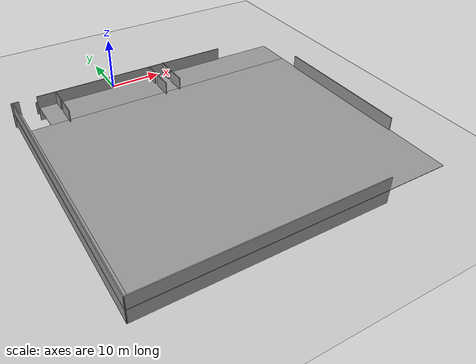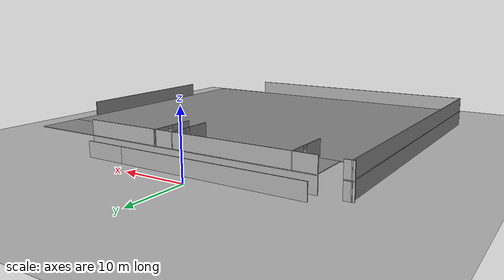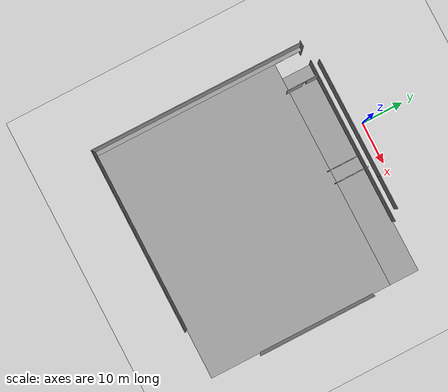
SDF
<sdf version="1.6">
 <world name="default">
  <model name="ground_plane">
   <static>1</static>
   <link name="link">
    <collision name="collision">
     <geometry><plane><normal>0 0 1</normal><size>100 100</size></plane></geometry>
     <surface>
      <contact><collide_bitmask>65535</collide_bitmask></contact>
      <friction><ode><mu>100</mu><mu2>50</mu2></ode></friction>
     </surface>
    </collision>
    <visual name="visual">
     <cast_shadows>0</cast_shadows>
     <geometry><plane><normal>0 0 1</normal><size>100 100</size></plane></geometry>
     <material>
      <script><uri>file://media/materials/scripts/gazebo.material</uri><name>Gazebo/Grey</name></script>
     </material>
    </visual>
   </link>
  </model>
  <model name="Level_1_with_doors">
   <link name="Wall_1">
    <pose>-6.28376 -25.0784 0 0 -0 0</pose>
    <inertial>
     <mass>1</mass>
     <inertia><ixx>1</ixx><ixy>0</ixy><ixz>0</ixz><iyy>1</iyy><iyz>0</iyz><izz>1</izz></inertia>
    </inertial>
    <visual name="Wall_1_Visual">
     <pose>0 0 1.25 0 -0 0</pose>
     <geometry><box><size>29.75 0.15 2.5</size></box></geometry>
     <material>
      <script><uri>file://media/materials/scripts/gazebo.material</uri><name>Gazebo/Grey</name></script>
      <ambient>1 1 1 1</ambient>
      <shader type="pixel"><normal_map>__default__</normal_map></shader>
      <diffuse>0.7 0.7 0.7 1</diffuse>
      <specular>0.01 0.01 0.01 1</specular>
      <emissive>0 0 0 1</emissive>
     </material>
     <meta><layer>0</layer></meta>
    </visual>
    <collision name="Wall_1_Collision">
     <pose>0 0 1.25 0 -0 0</pose>
     <geometry><box><size>29.75 0.15 2.5</size></box></geometry>
     <surface>
      <friction>
       <ode><mu>1</mu><mu2>1</mu2><fdir1>0 0 0</fdir1><slip1>0</slip1><slip2>0</slip2></ode>
       <torsional>
        <coefficient>1</coefficient>
        <patch_radius>0</patch_radius>
        <surface_radius>0</surface_radius>
        <use_patch_radius>1</use_patch_radius>
        <ode><slip>0</slip></ode>
       </torsional>
      </friction>
      <bounce><restitution_coefficient>0</restitution_coefficient><threshold>1e+06</threshold></bounce>
      <contact>
       <collide_without_contact>0</collide_without_contact>
       <collide_without_contact_bitmask>1</collide_without_contact_bitmask>
       <collide_bitmask>1</collide_bitmask>
       <ode>
        <soft_cfm>0</soft_cfm>
        <soft_erp>0.2</soft_erp>
        <kp>1e+13</kp>
        <kd>1</kd>
        <max_vel>0.01</max_vel>
        <min_depth>0</min_depth>
       </ode>
       <bullet>
        <split_impulse>1</split_impulse>
        <split_impulse_penetration_threshold>-0.01</split_impulse_penetration_threshold>
        <soft_cfm>0</soft_cfm>
        <soft_erp>0.2</soft_erp>
        <kp>1e+13</kp>
        <kd>1</kd>
       </bullet>
      </contact>
     </surface>
    </collision>
   </link>
   <link name="Wall_111_clone_0">
    <pose>11.2397 -25.0859 0 0 -0 0</pose>
    <inertial>
     <mass>1</mass>
     <inertia><ixx>1</ixx><ixy>0</ixy><ixz>0</ixz><iyy>1</iyy><iyz>0</iyz><izz>1</izz></inertia>
    </inertial>
    <visual name="Wall_111_Visual">
     <pose>0 0 1.25 0 -0 0</pose>
     <geometry><box><size>8 0.15 2.5</size></box></geometry>
     <material>
      <script><uri>file://media/materials/scripts/gazebo.material</uri><name>Gazebo/Grey</name></script>
      <ambient>1 1 1 1</ambient>
      <shader type="pixel"><normal_map>__default__</normal_map></shader>
      <diffuse>0.7 0.7 0.7 1</diffuse>
      <specular>0.01 0.01 0.01 1</specular>
      <emissive>0 0 0 1</emissive>
     </material>
     <meta><layer>0</layer></meta>
    </visual>
    <collision name="Wall_111_Collision">
     <pose>0 0 1.25 0 -0 0</pose>
     <geometry><box><size>8 0.15 2.5</size></box></geometry>
     <surface>
      <friction>
       <ode><mu>1</mu><mu2>1</mu2><fdir1>0 0 0</fdir1><slip1>0</slip1><slip2>0</slip2></ode>
       <torsional>
        <coefficient>1</coefficient>
        <patch_radius>0</patch_radius>
        <surface_radius>0</surface_radius>
        <use_patch_radius>1</use_patch_radius>
        <ode><slip>0</slip></ode>
       </torsional>
      </friction>
      <bounce><restitution_coefficient>0</restitution_coefficient><threshold>1e+06</threshold></bounce>
      <contact>
       <collide_without_contact>0</collide_without_contact>
       <collide_without_contact_bitmask>1</collide_without_contact_bitmask>
       <collide_bitmask>1</collide_bitmask>
       <ode>
        <soft_cfm>0</soft_cfm>
        <soft_erp>0.2</soft_erp>
        <kp>1e+13</kp>
        <kd>1</kd>
        <max_vel>0.01</max_vel>
        <min_depth>0</min_depth>
       </ode>
       <bullet>
        <split_impulse>1</split_impulse>
        <split_impulse_penetration_threshold>-0.01</split_impulse_penetration_threshold>
        <soft_cfm>0</soft_cfm>
        <soft_erp>0.2</soft_erp>
        <kp>1e+13</kp>
        <kd>1</kd>
       </bullet>
      </contact>
     </surface>
    </collision>
   </link>
   <static>1</static>
   <pose>4.79959 22.5424 0 0 -0 0</pose>
  </model>
  <model name="Lvl2_with_ramp">
   <link name="Floor_0">
    <pose>0 -0.277081 2.5 0 -0 0</pose>
    <visual name="Floor_0_Visual_2">
     <pose>2.31746 21.5343 0.05 0 -0 0</pose>
     <geometry><box><size>49.9669 6.78011 0.1</size></box></geometry>
     <material>
      <script><uri>file://media/materials/scripts/gazebo.material</uri><name>Gazebo/Grey</name></script>
      <ambient>1 1 1 1</ambient>
      <shader type="pixel"/>
     </material>
     <meta><layer>1</layer></meta>
    </visual>
    <visual name="Floor_0_Visual_1">
     <pose>0.563932 -3.39005 0.05 0 -0 0</pose>
     <geometry><box><size>53.474 43.0686 0.1</size></box></geometry>
     <material>
      <script><uri>file://media/materials/scripts/gazebo.material</uri><name>Gazebo/Grey</name></script>
      <ambient>1 1 1 1</ambient>
      <shader type="pixel"/>
     </material>
     <meta><layer>1</layer></meta>
    </visual>
    <visual name="Floor_0_Visual_0">
     <pose>-26.737 0 0.05 0 -0 0</pose>
     <geometry><box><size>1.12786 49.8487 0.1</size></box></geometry>
     <material>
      <script><uri>file://media/materials/scripts/gazebo.material</uri><name>Gazebo/Grey</name></script>
      <ambient>1 1 1 1</ambient>
      <shader type="pixel"/>
     </material>
     <meta><layer>1</layer></meta>
    </visual>
    <collision name="Floor_0_Collision_1">
     <pose>0.563932 -3.39005 0.05 0 -0 0</pose>
     <geometry><box><size>53.474 43.0686 0.1</size></box></geometry>
     <surface>
      <friction>
       <ode><mu>1</mu><mu2>1</mu2><fdir1>0 0 0</fdir1><slip1>0</slip1><slip2>0</slip2></ode>
       <torsional>
        <coefficient>1</coefficient>
        <patch_radius>0</patch_radius>
        <surface_radius>0</surface_radius>
        <use_patch_radius>1</use_patch_radius>
        <ode><slip>0</slip></ode>
       </torsional>
      </friction>
      <bounce><restitution_coefficient>0</restitution_coefficient><threshold>1e+06</threshold></bounce>
      <contact>
       <collide_without_contact>0</collide_without_contact>
       <collide_without_contact_bitmask>1</collide_without_contact_bitmask>
       <collide_bitmask>1</collide_bitmask>
       <ode>
        <soft_cfm>0</soft_cfm>
        <soft_erp>0.2</soft_erp>
        <kp>1e+13</kp>
        <kd>1</kd>
        <max_vel>0.01</max_vel>
        <min_depth>0</min_depth>
       </ode>
       <bullet>
        <split_impulse>1</split_impulse>
        <split_impulse_penetration_threshold>-0.01</split_impulse_penetration_threshold>
        <soft_cfm>0</soft_cfm>
        <soft_erp>0.2</soft_erp>
        <kp>1e+13</kp>
        <kd>1</kd>
       </bullet>
      </contact>
     </surface>
    </collision>
    <collision name="Floor_0_Collision_0">
     <pose>-26.737 0 0.05 0 -0 0</pose>
     <geometry><box><size>1.12786 49.8487 0.1</size></box></geometry>
     <surface>
      <friction>
       <ode><mu>1</mu><mu2>1</mu2><fdir1>0 0 0</fdir1><slip1>0</slip1><slip2>0</slip2></ode>
       <torsional>
        <coefficient>1</coefficient>
        <patch_radius>0</patch_radius>
        <surface_radius>0</surface_radius>
        <use_patch_radius>1</use_patch_radius>
        <ode><slip>0</slip></ode>
       </torsional>
      </friction>
      <bounce><restitution_coefficient>0</restitution_coefficient><threshold>1e+06</threshold></bounce>
      <contact>
       <collide_without_contact>0</collide_without_contact>
       <collide_without_contact_bitmask>1</collide_without_contact_bitmask>
       <collide_bitmask>1</collide_bitmask>
       <ode>
        <soft_cfm>0</soft_cfm>
        <soft_erp>0.2</soft_erp>
        <kp>1e+13</kp>
        <kd>1</kd>
        <max_vel>0.01</max_vel>
        <min_depth>0</min_depth>
       </ode>
       <bullet>
        <split_impulse>1</split_impulse>
        <split_impulse_penetration_threshold>-0.01</split_impulse_penetration_threshold>
        <soft_cfm>0</soft_cfm>
        <soft_erp>0.2</soft_erp>
        <kp>1e+13</kp>
        <kd>1</kd>
       </bullet>
      </contact>
     </surface>
    </collision>
    <collision name="Floor_0_Collision_2">
     <pose>2.31746 21.5343 0.05 0 -0 0</pose>
     <geometry><box><size>49.9669 6.78011 0.1</size></box></geometry>
     <surface>
      <friction>
       <ode><mu>1</mu><mu2>1</mu2><fdir1>0 0 0</fdir1><slip1>0</slip1><slip2>0</slip2></ode>
       <torsional>
        <coefficient>1</coefficient>
        <patch_radius>0</patch_radius>
        <surface_radius>0</surface_radius>
        <use_patch_radius>1</use_patch_radius>
        <ode><slip>0</slip></ode>
       </torsional>
      </friction>
      <bounce><restitution_coefficient>0</restitution_coefficient><threshold>1e+06</threshold></bounce>
      <contact>
       <collide_without_contact>0</collide_without_contact>
       <collide_without_contact_bitmask>1</collide_without_contact_bitmask>
       <collide_bitmask>1</collide_bitmask>
       <ode>
        <soft_cfm>0</soft_cfm>
        <soft_erp>0.2</soft_erp>
        <kp>1e+13</kp>
        <kd>1</kd>
        <max_vel>0.01</max_vel>
        <min_depth>0</min_depth>
       </ode>
       <bullet>
        <split_impulse>1</split_impulse>
        <split_impulse_penetration_threshold>-0.01</split_impulse_penetration_threshold>
        <soft_cfm>0</soft_cfm>
        <soft_erp>0.2</soft_erp>
        <kp>1e+13</kp>
        <kd>1</kd>
       </bullet>
      </contact>
     </surface>
    </collision>
   </link>
   <link name="Stairs_0">
    <inertial>
     <mass>1</mass>
     <inertia><ixx>1</ixx><ixy>0</ixy><ixz>0</ixz><iyy>1</iyy><iyz>0</iyz><izz>1</izz></inertia>
    </inertial>
   </link>
   <link name="Wall_0">
    <pose>-27.1708 -0.318283 0 0 0 -1.57301</pose>
    <visual name="Wall_0_Visual">
     <pose>0 0 1.25 0 -0 0</pose>
     <geometry><box><size>49.7662 0.15 2.5</size></box></geometry>
     <material>
      <script><uri>file://media/materials/scripts/gazebo.material</uri><name>Gazebo/Grey</name></script>
      <ambient>1 1 1 1</ambient>
      <shader type="pixel"/>
     </material>
     <meta><layer>0</layer></meta>
    </visual>
    <collision name="Wall_0_Collision">
     <pose>0 0 1.25 0 -0 0</pose>
     <geometry><box><size>49.7662 0.15 2.5</size></box></geometry>
     <surface>
      <friction>
       <ode><mu>1</mu><mu2>1</mu2><fdir1>0 0 0</fdir1><slip1>0</slip1><slip2>0</slip2></ode>
       <torsional>
        <coefficient>1</coefficient>
        <patch_radius>0</patch_radius>
        <surface_radius>0</surface_radius>
        <use_patch_radius>1</use_patch_radius>
        <ode><slip>0</slip></ode>
       </torsional>
      </friction>
      <bounce><restitution_coefficient>0</restitution_coefficient><threshold>1e+06</threshold></bounce>
      <contact>
       <collide_without_contact>0</collide_without_contact>
       <collide_without_contact_bitmask>1</collide_without_contact_bitmask>
       <collide_bitmask>1</collide_bitmask>
       <ode>
        <soft_cfm>0</soft_cfm>
        <soft_erp>0.2</soft_erp>
        <kp>1e+13</kp>
        <kd>1</kd>
        <max_vel>0.01</max_vel>
        <min_depth>0</min_depth>
       </ode>
       <bullet>
        <split_impulse>1</split_impulse>
        <split_impulse_penetration_threshold>-0.01</split_impulse_penetration_threshold>
        <soft_cfm>0</soft_cfm>
        <soft_erp>0.2</soft_erp>
        <kp>1e+13</kp>
        <kd>1</kd>
       </bullet>
      </contact>
     </surface>
    </collision>
   </link>
   <link name="Wall_1">
    <pose>-5.80076 -25.1263 0 0 -0 0</pose>
    <visual name="Wall_1_Visual">
     <pose>0 0 1.25 0 -0 0</pose>
     <geometry><box><size>43 0.15 2.5</size></box></geometry>
     <material>
      <script><uri>file://media/materials/scripts/gazebo.material</uri><name>Gazebo/Grey</name></script>
      <ambient>1 1 1 1</ambient>
      <shader type="pixel"/>
     </material>
     <meta><layer>0</layer></meta>
    </visual>
    <collision name="Wall_1_Collision">
     <pose>0 0 1.25 0 -0 0</pose>
     <geometry><box><size>43 0.15 2.5</size></box></geometry>
     <surface>
      <friction>
       <ode><mu>1</mu><mu2>1</mu2><fdir1>0 0 0</fdir1><slip1>0</slip1><slip2>0</slip2></ode>
       <torsional>
        <coefficient>1</coefficient>
        <patch_radius>0</patch_radius>
        <surface_radius>0</surface_radius>
        <use_patch_radius>1</use_patch_radius>
        <ode><slip>0</slip></ode>
       </torsional>
      </friction>
      <bounce><restitution_coefficient>0</restitution_coefficient><threshold>1e+06</threshold></bounce>
      <contact>
       <collide_without_contact>0</collide_without_contact>
       <collide_without_contact_bitmask>1</collide_without_contact_bitmask>
       <collide_bitmask>1</collide_bitmask>
       <ode>
        <soft_cfm>0</soft_cfm>
        <soft_erp>0.2</soft_erp>
        <kp>1e+13</kp>
        <kd>1</kd>
        <max_vel>0.01</max_vel>
        <min_depth>0</min_depth>
       </ode>
       <bullet>
        <split_impulse>1</split_impulse>
        <split_impulse_penetration_threshold>-0.01</split_impulse_penetration_threshold>
        <soft_cfm>0</soft_cfm>
        <soft_erp>0.2</soft_erp>
        <kp>1e+13</kp>
        <kd>1</kd>
       </bullet>
      </contact>
     </surface>
    </collision>
   </link>
   <link name="Wall_11">
    <pose>-27.1708 -0.318283 2.5 0 0 -1.57301</pose>
    <visual name="Wall_11_Visual">
     <pose>0 0 1.25 0 -0 0</pose>
     <geometry><box><size>49.7661 0.15 2.5</size></box></geometry>
     <material>
      <script><uri>file://media/materials/scripts/gazebo.material</uri><name>Gazebo/Grey</name></script>
      <ambient>1 1 1 1</ambient>
      <shader type="pixel"/>
     </material>
     <meta><layer>1</layer></meta>
    </visual>
    <collision name="Wall_11_Collision">
     <pose>0 0 1.25 0 -0 0</pose>
     <geometry><box><size>49.7661 0.15 2.5</size></box></geometry>
     <surface>
      <friction>
       <ode><mu>1</mu><mu2>1</mu2><fdir1>0 0 0</fdir1><slip1>0</slip1><slip2>0</slip2></ode>
       <torsional>
        <coefficient>1</coefficient>
        <patch_radius>0</patch_radius>
        <surface_radius>0</surface_radius>
        <use_patch_radius>1</use_patch_radius>
        <ode><slip>0</slip></ode>
       </torsional>
      </friction>
      <bounce><restitution_coefficient>0</restitution_coefficient><threshold>1e+06</threshold></bounce>
      <contact>
       <collide_without_contact>0</collide_without_contact>
       <collide_without_contact_bitmask>1</collide_without_contact_bitmask>
       <collide_bitmask>1</collide_bitmask>
       <ode>
        <soft_cfm>0</soft_cfm>
        <soft_erp>0.2</soft_erp>
        <kp>1e+13</kp>
        <kd>1</kd>
        <max_vel>0.01</max_vel>
        <min_depth>0</min_depth>
       </ode>
       <bullet>
        <split_impulse>1</split_impulse>
        <split_impulse_penetration_threshold>-0.01</split_impulse_penetration_threshold>
        <soft_cfm>0</soft_cfm>
        <soft_erp>0.2</soft_erp>
        <kp>1e+13</kp>
        <kd>1</kd>
       </bullet>
      </contact>
     </surface>
    </collision>
   </link>
   <link name="Wall_12">
    <pose>-5.80076 -25.1263 2.5 0 -0 0</pose>
    <visual name="Wall_12_Visual">
     <pose>0 0 1.25 0 -0 0</pose>
     <geometry><box><size>43 0.15 2.5</size></box></geometry>
     <material>
      <script><uri>file://media/materials/scripts/gazebo.material</uri><name>Gazebo/Grey</name></script>
      <ambient>1 1 1 1</ambient>
      <shader type="pixel"/>
     </material>
     <meta><layer>1</layer></meta>
    </visual>
    <collision name="Wall_12_Collision">
     <pose>0 0 1.25 0 -0 0</pose>
     <geometry><box><size>43 0.15 2.5</size></box></geometry>
     <surface>
      <friction>
       <ode><mu>1</mu><mu2>1</mu2><fdir1>0 0 0</fdir1><slip1>0</slip1><slip2>0</slip2></ode>
       <torsional>
        <coefficient>1</coefficient>
        <patch_radius>0</patch_radius>
        <surface_radius>0</surface_radius>
        <use_patch_radius>1</use_patch_radius>
        <ode><slip>0</slip></ode>
       </torsional>
      </friction>
      <bounce><restitution_coefficient>0</restitution_coefficient><threshold>1e+06</threshold></bounce>
      <contact>
       <collide_without_contact>0</collide_without_contact>
       <collide_without_contact_bitmask>1</collide_without_contact_bitmask>
       <collide_bitmask>1</collide_bitmask>
       <ode>
        <soft_cfm>0</soft_cfm>
        <soft_erp>0.2</soft_erp>
        <kp>1e+13</kp>
        <kd>1</kd>
        <max_vel>0.01</max_vel>
        <min_depth>0</min_depth>
       </ode>
       <bullet>
        <split_impulse>1</split_impulse>
        <split_impulse_penetration_threshold>-0.01</split_impulse_penetration_threshold>
        <soft_cfm>0</soft_cfm>
        <soft_erp>0.2</soft_erp>
        <kp>1e+13</kp>
        <kd>1</kd>
       </bullet>
      </contact>
     </surface>
    </collision>
   </link>
   <link name="Wall_13">
    <pose>27.2259 0.038433 2.5 0 0 -1.5708</pose>
    <visual name="Wall_13_Visual">
     <pose>0 0 1.25 0 -0 0</pose>
     <geometry><box><size>27 0.15 2.5</size></box></geometry>
     <material>
      <script><uri>file://media/materials/scripts/gazebo.material</uri><name>Gazebo/Grey</name></script>
      <ambient>1 1 1 1</ambient>
      <shader type="pixel"/>
     </material>
     <meta><layer>1</layer></meta>
    </visual>
    <collision name="Wall_13_Collision">
     <pose>0 0 1.25 0 -0 0</pose>
     <geometry><box><size>27 0.15 2.5</size></box></geometry>
     <surface>
      <friction>
       <ode><mu>1</mu><mu2>1</mu2><fdir1>0 0 0</fdir1><slip1>0</slip1><slip2>0</slip2></ode>
       <torsional>
        <coefficient>1</coefficient>
        <patch_radius>0</patch_radius>
        <surface_radius>0</surface_radius>
        <use_patch_radius>1</use_patch_radius>
        <ode><slip>0</slip></ode>
       </torsional>
      </friction>
      <bounce><restitution_coefficient>0</restitution_coefficient><threshold>1e+06</threshold></bounce>
      <contact>
       <collide_without_contact>0</collide_without_contact>
       <collide_without_contact_bitmask>1</collide_without_contact_bitmask>
       <collide_bitmask>1</collide_bitmask>
       <ode>
        <soft_cfm>0</soft_cfm>
        <soft_erp>0.2</soft_erp>
        <kp>1e+13</kp>
        <kd>1</kd>
        <max_vel>0.01</max_vel>
        <min_depth>0</min_depth>
       </ode>
       <bullet>
        <split_impulse>1</split_impulse>
        <split_impulse_penetration_threshold>-0.01</split_impulse_penetration_threshold>
        <soft_cfm>0</soft_cfm>
        <soft_erp>0.2</soft_erp>
        <kp>1e+13</kp>
        <kd>1</kd>
       </bullet>
      </contact>
     </surface>
    </collision>
   </link>
   <link name="Wall_14">
    <pose>-26.759 24.4552 2.5 0 -0 0</pose>
    <inertial>
     <mass>1</mass>
     <inertia><ixx>1</ixx><ixy>0</ixy><ixz>0</ixz><iyy>1</iyy><iyz>0</iyz><izz>1</izz></inertia>
    </inertial>
    <visual name="Wall_14_Visual">
     <pose>0 0 1.25 0 -0 0</pose>
     <geometry><box><size>1.45 0.15 2.5</size></box></geometry>
     <material>
      <script><uri>file://media/materials/scripts/gazebo.material</uri><name>Gazebo/Grey</name></script>
      <ambient>1 1 1 1</ambient>
      <shader type="pixel"><normal_map>__default__</normal_map></shader>
      <diffuse>0.7 0.7 0.7 1</diffuse>
      <specular>0.01 0.01 0.01 1</specular>
      <emissive>0 0 0 1</emissive>
     </material>
     <meta><layer>1</layer></meta>
    </visual>
    <collision name="Wall_14_Collision">
     <pose>0 0 1.25 0 -0 0</pose>
     <geometry><box><size>1.45 0.15 2.5</size></box></geometry>
     <surface>
      <friction>
       <ode><mu>1</mu><mu2>1</mu2><fdir1>0 0 0</fdir1><slip1>0</slip1><slip2>0</slip2></ode>
       <torsional>
        <coefficient>1</coefficient>
        <patch_radius>0</patch_radius>
        <surface_radius>0</surface_radius>
        <use_patch_radius>1</use_patch_radius>
        <ode><slip>0</slip></ode>
       </torsional>
      </friction>
      <bounce><restitution_coefficient>0</restitution_coefficient><threshold>1e+06</threshold></bounce>
      <contact>
       <collide_without_contact>0</collide_without_contact>
       <collide_without_contact_bitmask>1</collide_without_contact_bitmask>
       <collide_bitmask>1</collide_bitmask>
       <ode>
        <soft_cfm>0</soft_cfm>
        <soft_erp>0.2</soft_erp>
        <kp>1e+13</kp>
        <kd>1</kd>
        <max_vel>0.01</max_vel>
        <min_depth>0</min_depth>
       </ode>
       <bullet>
        <split_impulse>1</split_impulse>
        <split_impulse_penetration_threshold>-0.01</split_impulse_penetration_threshold>
        <soft_cfm>0</soft_cfm>
        <soft_erp>0.2</soft_erp>
        <kp>1e+13</kp>
        <kd>1</kd>
       </bullet>
      </contact>
     </surface>
    </collision>
   </link>
   <link name="Wall_15">
    <pose>-3.70995 24.5303 2.5 0 -0 0</pose>
    <visual name="Wall_15_Visual">
     <pose>0 0 1.25 0 -0 0</pose>
     <geometry><box><size>38.25 0.15 2.5</size></box></geometry>
     <material>
      <script><uri>file://media/materials/scripts/gazebo.material</uri><name>Gazebo/Grey</name></script>
      <ambient>1 1 1 1</ambient>
      <shader type="pixel"/>
     </material>
     <meta><layer>1</layer></meta>
    </visual>
    <collision name="Wall_15_Collision">
     <pose>0 0 1.25 0 -0 0</pose>
     <geometry><box><size>38.25 0.15 2.5</size></box></geometry>
     <surface>
      <friction>
       <ode><mu>1</mu><mu2>1</mu2><fdir1>0 0 0</fdir1><slip1>0</slip1><slip2>0</slip2></ode>
       <torsional>
        <coefficient>1</coefficient>
        <patch_radius>0</patch_radius>
        <surface_radius>0</surface_radius>
        <use_patch_radius>1</use_patch_radius>
        <ode><slip>0</slip></ode>
       </torsional>
      </friction>
      <bounce><restitution_coefficient>0</restitution_coefficient><threshold>1e+06</threshold></bounce>
      <contact>
       <collide_without_contact>0</collide_without_contact>
       <collide_without_contact_bitmask>1</collide_without_contact_bitmask>
       <collide_bitmask>1</collide_bitmask>
       <ode>
        <soft_cfm>0</soft_cfm>
        <soft_erp>0.2</soft_erp>
        <kp>1e+13</kp>
        <kd>1</kd>
        <max_vel>0.01</max_vel>
        <min_depth>0</min_depth>
       </ode>
       <bullet>
        <split_impulse>1</split_impulse>
        <split_impulse_penetration_threshold>-0.01</split_impulse_penetration_threshold>
        <soft_cfm>0</soft_cfm>
        <soft_erp>0.2</soft_erp>
        <kp>1e+13</kp>
        <kd>1</kd>
       </bullet>
      </contact>
     </surface>
    </collision>
   </link>
   <link name="Wall_16">
    <pose>-19.3268 20.8677 2.5 0 0 -1.5708</pose>
    <visual name="Wall_16_Visual_1">
     <pose>1.86574 0 1.25 0 -0 0</pose>
     <geometry><box><size>3.76852 0.15 2.5</size></box></geometry>
     <material>
      <script><uri>file://media/materials/scripts/gazebo.material</uri><name>Gazebo/Grey</name></script>
      <ambient>1 1 1 1</ambient>
      <shader type="pixel"/>
     </material>
     <meta><layer>1</layer></meta>
    </visual>
    <visual name="Wall_16_Visual_0">
     <pose>-2.33426 0 1.25 0 -0 0</pose>
     <geometry><box><size>2.83148 0.15 2.5</size></box></geometry>
     <material>
      <script><uri>file://media/materials/scripts/gazebo.material</uri><name>Gazebo/Grey</name></script>
      <ambient>1 1 1 1</ambient>
      <shader type="pixel"/>
     </material>
     <meta><layer>1</layer></meta>
    </visual>
    <visual name="Wall_16_Visual_2">
     <pose>-0.468521 0 2.25 0 -0 0</pose>
     <geometry><box><size>0.9 0.15 0.5</size></box></geometry>
     <material>
      <script><uri>file://media/materials/scripts/gazebo.material</uri><name>Gazebo/Grey</name></script>
      <ambient>1 1 1 1</ambient>
      <shader type="pixel"/>
     </material>
     <meta><layer>1</layer></meta>
    </visual>
    <collision name="Wall_16_Collision_2">
     <pose>-0.468521 0 2.25 0 -0 0</pose>
     <geometry><box><size>0.9 0.15 0.5</size></box></geometry>
     <surface>
      <friction>
       <ode><mu>1</mu><mu2>1</mu2><fdir1>0 0 0</fdir1><slip1>0</slip1><slip2>0</slip2></ode>
       <torsional>
        <coefficient>1</coefficient>
        <patch_radius>0</patch_radius>
        <surface_radius>0</surface_radius>
        <use_patch_radius>1</use_patch_radius>
        <ode><slip>0</slip></ode>
       </torsional>
      </friction>
      <bounce><restitution_coefficient>0</restitution_coefficient><threshold>1e+06</threshold></bounce>
      <contact>
       <collide_without_contact>0</collide_without_contact>
       <collide_without_contact_bitmask>1</collide_without_contact_bitmask>
       <collide_bitmask>1</collide_bitmask>
       <ode>
        <soft_cfm>0</soft_cfm>
        <soft_erp>0.2</soft_erp>
        <kp>1e+13</kp>
        <kd>1</kd>
        <max_vel>0.01</max_vel>
        <min_depth>0</min_depth>
       </ode>
       <bullet>
        <split_impulse>1</split_impulse>
        <split_impulse_penetration_threshold>-0.01</split_impulse_penetration_threshold>
        <soft_cfm>0</soft_cfm>
        <soft_erp>0.2</soft_erp>
        <kp>1e+13</kp>
        <kd>1</kd>
       </bullet>
      </contact>
     </surface>
    </collision>
    <collision name="Wall_16_Collision_0">
     <pose>-2.33426 0 1.25 0 -0 0</pose>
     <geometry><box><size>2.83148 0.15 2.5</size></box></geometry>
     <surface>
      <friction>
       <ode><mu>1</mu><mu2>1</mu2><fdir1>0 0 0</fdir1><slip1>0</slip1><slip2>0</slip2></ode>
       <torsional>
        <coefficient>1</coefficient>
        <patch_radius>0</patch_radius>
        <surface_radius>0</surface_radius>
        <use_patch_radius>1</use_patch_radius>
        <ode><slip>0</slip></ode>
       </torsional>
      </friction>
      <bounce><restitution_coefficient>0</restitution_coefficient><threshold>1e+06</threshold></bounce>
      <contact>
       <collide_without_contact>0</collide_without_contact>
       <collide_without_contact_bitmask>1</collide_without_contact_bitmask>
       <collide_bitmask>1</collide_bitmask>
       <ode>
        <soft_cfm>0</soft_cfm>
        <soft_erp>0.2</soft_erp>
        <kp>1e+13</kp>
        <kd>1</kd>
        <max_vel>0.01</max_vel>
        <min_depth>0</min_depth>
       </ode>
       <bullet>
        <split_impulse>1</split_impulse>
        <split_impulse_penetration_threshold>-0.01</split_impulse_penetration_threshold>
        <soft_cfm>0</soft_cfm>
        <soft_erp>0.2</soft_erp>
        <kp>1e+13</kp>
        <kd>1</kd>
       </bullet>
      </contact>
     </surface>
    </collision>
    <collision name="Wall_16_Collision_1">
     <pose>1.86574 0 1.25 0 -0 0</pose>
     <geometry><box><size>3.76852 0.15 2.5</size></box></geometry>
     <surface>
      <friction>
       <ode><mu>1</mu><mu2>1</mu2><fdir1>0 0 0</fdir1><slip1>0</slip1><slip2>0</slip2></ode>
       <torsional>
        <coefficient>1</coefficient>
        <patch_radius>0</patch_radius>
        <surface_radius>0</surface_radius>
        <use_patch_radius>1</use_patch_radius>
        <ode><slip>0</slip></ode>
       </torsional>
      </friction>
      <bounce><restitution_coefficient>0</restitution_coefficient><threshold>1e+06</threshold></bounce>
      <contact>
       <collide_without_contact>0</collide_without_contact>
       <collide_without_contact_bitmask>1</collide_without_contact_bitmask>
       <collide_bitmask>1</collide_bitmask>
       <ode>
        <soft_cfm>0</soft_cfm>
        <soft_erp>0.2</soft_erp>
        <kp>1e+13</kp>
        <kd>1</kd>
        <max_vel>0.01</max_vel>
        <min_depth>0</min_depth>
       </ode>
       <bullet>
        <split_impulse>1</split_impulse>
        <split_impulse_penetration_threshold>-0.01</split_impulse_penetration_threshold>
        <soft_cfm>0</soft_cfm>
        <soft_erp>0.2</soft_erp>
        <kp>1e+13</kp>
        <kd>1</kd>
       </bullet>
      </contact>
     </surface>
    </collision>
   </link>
   <link name="Wall_20">
    <pose>-0.409277 20.8689 2.5 0 0 -1.5708</pose>
    <visual name="Wall_20_Visual_0">
     <pose>-2.34479 0 1.25 0 -0 0</pose>
     <geometry><box><size>2.81043 0.15 2.5</size></box></geometry>
     <material>
      <script><uri>file://media/materials/scripts/gazebo.material</uri><name>Gazebo/Grey</name></script>
      <ambient>1 1 1 1</ambient>
      <shader type="pixel"/>
     </material>
     <meta><layer>1</layer></meta>
    </visual>
    <visual name="Wall_20_Visual_2">
     <pose>-0.489574 0 2.25 0 -0 0</pose>
     <geometry><box><size>0.9 0.15 0.5</size></box></geometry>
     <material>
      <script><uri>file://media/materials/scripts/gazebo.material</uri><name>Gazebo/Grey</name></script>
      <ambient>1 1 1 1</ambient>
      <shader type="pixel"/>
     </material>
     <meta><layer>1</layer></meta>
    </visual>
    <visual name="Wall_20_Visual_1">
     <pose>1.85521 0 1.25 0 -0 0</pose>
     <geometry><box><size>3.78957 0.15 2.5</size></box></geometry>
     <material>
      <script><uri>file://media/materials/scripts/gazebo.material</uri><name>Gazebo/Grey</name></script>
      <ambient>1 1 1 1</ambient>
      <shader type="pixel"/>
     </material>
     <meta><layer>1</layer></meta>
    </visual>
    <collision name="Wall_20_Collision_0">
     <pose>-2.34479 0 1.25 0 -0 0</pose>
     <geometry><box><size>2.81043 0.15 2.5</size></box></geometry>
     <surface>
      <friction>
       <ode><mu>1</mu><mu2>1</mu2><fdir1>0 0 0</fdir1><slip1>0</slip1><slip2>0</slip2></ode>
       <torsional>
        <coefficient>1</coefficient>
        <patch_radius>0</patch_radius>
        <surface_radius>0</surface_radius>
        <use_patch_radius>1</use_patch_radius>
        <ode><slip>0</slip></ode>
       </torsional>
      </friction>
      <bounce><restitution_coefficient>0</restitution_coefficient><threshold>1e+06</threshold></bounce>
      <contact>
       <collide_without_contact>0</collide_without_contact>
       <collide_without_contact_bitmask>1</collide_without_contact_bitmask>
       <collide_bitmask>1</collide_bitmask>
       <ode>
        <soft_cfm>0</soft_cfm>
        <soft_erp>0.2</soft_erp>
        <kp>1e+13</kp>
        <kd>1</kd>
        <max_vel>0.01</max_vel>
        <min_depth>0</min_depth>
       </ode>
       <bullet>
        <split_impulse>1</split_impulse>
        <split_impulse_penetration_threshold>-0.01</split_impulse_penetration_threshold>
        <soft_cfm>0</soft_cfm>
        <soft_erp>0.2</soft_erp>
        <kp>1e+13</kp>
        <kd>1</kd>
       </bullet>
      </contact>
     </surface>
    </collision>
    <collision name="Wall_20_Collision_1">
     <pose>1.85521 0 1.25 0 -0 0</pose>
     <geometry><box><size>3.78957 0.15 2.5</size></box></geometry>
     <surface>
      <friction>
       <ode><mu>1</mu><mu2>1</mu2><fdir1>0 0 0</fdir1><slip1>0</slip1><slip2>0</slip2></ode>
       <torsional>
        <coefficient>1</coefficient>
        <patch_radius>0</patch_radius>
        <surface_radius>0</surface_radius>
        <use_patch_radius>1</use_patch_radius>
        <ode><slip>0</slip></ode>
       </torsional>
      </friction>
      <bounce><restitution_coefficient>0</restitution_coefficient><threshold>1e+06</threshold></bounce>
      <contact>
       <collide_without_contact>0</collide_without_contact>
       <collide_without_contact_bitmask>1</collide_without_contact_bitmask>
       <collide_bitmask>1</collide_bitmask>
       <ode>
        <soft_cfm>0</soft_cfm>
        <soft_erp>0.2</soft_erp>
        <kp>1e+13</kp>
        <kd>1</kd>
        <max_vel>0.01</max_vel>
        <min_depth>0</min_depth>
       </ode>
       <bullet>
        <split_impulse>1</split_impulse>
        <split_impulse_penetration_threshold>-0.01</split_impulse_penetration_threshold>
        <soft_cfm>0</soft_cfm>
        <soft_erp>0.2</soft_erp>
        <kp>1e+13</kp>
        <kd>1</kd>
       </bullet>
      </contact>
     </surface>
    </collision>
    <collision name="Wall_20_Collision_2">
     <pose>-0.489574 0 2.25 0 -0 0</pose>
     <geometry><box><size>0.9 0.15 0.5</size></box></geometry>
     <surface>
      <friction>
       <ode><mu>1</mu><mu2>1</mu2><fdir1>0 0 0</fdir1><slip1>0</slip1><slip2>0</slip2></ode>
       <torsional>
        <coefficient>1</coefficient>
        <patch_radius>0</patch_radius>
        <surface_radius>0</surface_radius>
        <use_patch_radius>1</use_patch_radius>
        <ode><slip>0</slip></ode>
       </torsional>
      </friction>
      <bounce><restitution_coefficient>0</restitution_coefficient><threshold>1e+06</threshold></bounce>
      <contact>
       <collide_without_contact>0</collide_without_contact>
       <collide_without_contact_bitmask>1</collide_without_contact_bitmask>
       <collide_bitmask>1</collide_bitmask>
       <ode>
        <soft_cfm>0</soft_cfm>
        <soft_erp>0.2</soft_erp>
        <kp>1e+13</kp>
        <kd>1</kd>
        <max_vel>0.01</max_vel>
        <min_depth>0</min_depth>
       </ode>
       <bullet>
        <split_impulse>1</split_impulse>
        <split_impulse_penetration_threshold>-0.01</split_impulse_penetration_threshold>
        <soft_cfm>0</soft_cfm>
        <soft_erp>0.2</soft_erp>
        <kp>1e+13</kp>
        <kd>1</kd>
       </bullet>
      </contact>
     </surface>
    </collision>
   </link>
   <link name="Wall_22">
    <pose>2.61072 21.1155 2.5 0 0 -1.5708</pose>
    <visual name="Wall_22_Visual_2">
     <pose>-0.430586 0 2.25 0 -0 0</pose>
     <geometry><box><size>0.9 0.15 0.5</size></box></geometry>
     <material>
      <script><uri>file://media/materials/scripts/gazebo.material</uri><name>Gazebo/Grey</name></script>
      <ambient>1 1 1 1</ambient>
      <shader type="pixel"/>
     </material>
     <meta><layer>1</layer></meta>
    </visual>
    <visual name="Wall_22_Visual_1">
     <pose>1.88471 0 1.25 0 -0 0</pose>
     <geometry><box><size>3.73059 0.15 2.5</size></box></geometry>
     <material>
      <script><uri>file://media/materials/scripts/gazebo.material</uri><name>Gazebo/Grey</name></script>
      <ambient>1 1 1 1</ambient>
      <shader type="pixel"/>
     </material>
     <meta><layer>1</layer></meta>
    </visual>
    <visual name="Wall_22_Visual_0">
     <pose>-2.31529 0 1.25 0 -0 0</pose>
     <geometry><box><size>2.86941 0.15 2.5</size></box></geometry>
     <material>
      <script><uri>file://media/materials/scripts/gazebo.material</uri><name>Gazebo/Grey</name></script>
      <ambient>1 1 1 1</ambient>
      <shader type="pixel"/>
     </material>
     <meta><layer>1</layer></meta>
    </visual>
    <collision name="Wall_22_Collision_2">
     <pose>-0.430586 0 2.25 0 -0 0</pose>
     <geometry><box><size>0.9 0.15 0.5</size></box></geometry>
     <surface>
      <friction>
       <ode><mu>1</mu><mu2>1</mu2><fdir1>0 0 0</fdir1><slip1>0</slip1><slip2>0</slip2></ode>
       <torsional>
        <coefficient>1</coefficient>
        <patch_radius>0</patch_radius>
        <surface_radius>0</surface_radius>
        <use_patch_radius>1</use_patch_radius>
        <ode><slip>0</slip></ode>
       </torsional>
      </friction>
      <bounce><restitution_coefficient>0</restitution_coefficient><threshold>1e+06</threshold></bounce>
      <contact>
       <collide_without_contact>0</collide_without_contact>
       <collide_without_contact_bitmask>1</collide_without_contact_bitmask>
       <collide_bitmask>1</collide_bitmask>
       <ode>
        <soft_cfm>0</soft_cfm>
        <soft_erp>0.2</soft_erp>
        <kp>1e+13</kp>
        <kd>1</kd>
        <max_vel>0.01</max_vel>
        <min_depth>0</min_depth>
       </ode>
       <bullet>
        <split_impulse>1</split_impulse>
        <split_impulse_penetration_threshold>-0.01</split_impulse_penetration_threshold>
        <soft_cfm>0</soft_cfm>
        <soft_erp>0.2</soft_erp>
        <kp>1e+13</kp>
        <kd>1</kd>
       </bullet>
      </contact>
     </surface>
    </collision>
    <collision name="Wall_22_Collision_1">
     <pose>1.88471 0 1.25 0 -0 0</pose>
     <geometry><box><size>3.73059 0.15 2.5</size></box></geometry>
     <surface>
      <friction>
       <ode><mu>1</mu><mu2>1</mu2><fdir1>0 0 0</fdir1><slip1>0</slip1><slip2>0</slip2></ode>
       <torsional>
        <coefficient>1</coefficient>
        <patch_radius>0</patch_radius>
        <surface_radius>0</surface_radius>
        <use_patch_radius>1</use_patch_radius>
        <ode><slip>0</slip></ode>
       </torsional>
      </friction>
      <bounce><restitution_coefficient>0</restitution_coefficient><threshold>1e+06</threshold></bounce>
      <contact>
       <collide_without_contact>0</collide_without_contact>
       <collide_without_contact_bitmask>1</collide_without_contact_bitmask>
       <collide_bitmask>1</collide_bitmask>
       <ode>
        <soft_cfm>0</soft_cfm>
        <soft_erp>0.2</soft_erp>
        <kp>1e+13</kp>
        <kd>1</kd>
        <max_vel>0.01</max_vel>
        <min_depth>0</min_depth>
       </ode>
       <bullet>
        <split_impulse>1</split_impulse>
        <split_impulse_penetration_threshold>-0.01</split_impulse_penetration_threshold>
        <soft_cfm>0</soft_cfm>
        <soft_erp>0.2</soft_erp>
        <kp>1e+13</kp>
        <kd>1</kd>
       </bullet>
      </contact>
     </surface>
    </collision>
    <collision name="Wall_22_Collision_0">
     <pose>-2.31529 0 1.25 0 -0 0</pose>
     <geometry><box><size>2.86941 0.15 2.5</size></box></geometry>
     <surface>
      <friction>
       <ode><mu>1</mu><mu2>1</mu2><fdir1>0 0 0</fdir1><slip1>0</slip1><slip2>0</slip2></ode>
       <torsional>
        <coefficient>1</coefficient>
        <patch_radius>0</patch_radius>
        <surface_radius>0</surface_radius>
        <use_patch_radius>1</use_patch_radius>
        <ode><slip>0</slip></ode>
       </torsional>
      </friction>
      <bounce><restitution_coefficient>0</restitution_coefficient><threshold>1e+06</threshold></bounce>
      <contact>
       <collide_without_contact>0</collide_without_contact>
       <collide_without_contact_bitmask>1</collide_without_contact_bitmask>
       <collide_bitmask>1</collide_bitmask>
       <ode>
        <soft_cfm>0</soft_cfm>
        <soft_erp>0.2</soft_erp>
        <kp>1e+13</kp>
        <kd>1</kd>
        <max_vel>0.01</max_vel>
        <min_depth>0</min_depth>
       </ode>
       <bullet>
        <split_impulse>1</split_impulse>
        <split_impulse_penetration_threshold>-0.01</split_impulse_penetration_threshold>
        <soft_cfm>0</soft_cfm>
        <soft_erp>0.2</soft_erp>
        <kp>1e+13</kp>
        <kd>1</kd>
       </bullet>
      </contact>
     </surface>
    </collision>
   </link>
   <link name="Wall_3">
    <pose>27.2259 0.038433 0 0 0 -1.5708</pose>
    <visual name="Wall_3_Visual">
     <pose>0 0 1.25 0 -0 0</pose>
     <geometry><box><size>27 0.15 2.5</size></box></geometry>
     <material>
      <script><uri>file://media/materials/scripts/gazebo.material</uri><name>Gazebo/Grey</name></script>
      <ambient>1 1 1 1</ambient>
      <shader type="pixel"/>
     </material>
     <meta><layer>0</layer></meta>
    </visual>
    <collision name="Wall_3_Collision">
     <pose>0 0 1.25 0 -0 0</pose>
     <geometry><box><size>27 0.15 2.5</size></box></geometry>
     <surface>
      <friction>
       <ode><mu>1</mu><mu2>1</mu2><fdir1>0 0 0</fdir1><slip1>0</slip1><slip2>0</slip2></ode>
       <torsional>
        <coefficient>1</coefficient>
        <patch_radius>0</patch_radius>
        <surface_radius>0</surface_radius>
        <use_patch_radius>1</use_patch_radius>
        <ode><slip>0</slip></ode>
       </torsional>
      </friction>
      <bounce><restitution_coefficient>0</restitution_coefficient><threshold>1e+06</threshold></bounce>
      <contact>
       <collide_without_contact>0</collide_without_contact>
       <collide_without_contact_bitmask>1</collide_without_contact_bitmask>
       <collide_bitmask>1</collide_bitmask>
       <ode>
        <soft_cfm>0</soft_cfm>
        <soft_erp>0.2</soft_erp>
        <kp>1e+13</kp>
        <kd>1</kd>
        <max_vel>0.01</max_vel>
        <min_depth>0</min_depth>
       </ode>
       <bullet>
        <split_impulse>1</split_impulse>
        <split_impulse_penetration_threshold>-0.01</split_impulse_penetration_threshold>
        <soft_cfm>0</soft_cfm>
        <soft_erp>0.2</soft_erp>
        <kp>1e+13</kp>
        <kd>1</kd>
       </bullet>
      </contact>
     </surface>
    </collision>
   </link>
   <link name="Wall_7">
    <pose>-26.7709 24.4171 0 0 -0 0</pose>
    <inertial>
     <mass>1</mass>
     <inertia><ixx>1</ixx><ixy>0</ixy><ixz>0</ixz><iyy>1</iyy><iyz>0</iyz><izz>1</izz></inertia>
    </inertial>
    <visual name="Wall_7_Visual">
     <pose>0 0 1.25 0 -0 0</pose>
     <geometry><box><size>1.5 0.15 2.5</size></box></geometry>
     <material>
      <script><uri>file://media/materials/scripts/gazebo.material</uri><name>Gazebo/Grey</name></script>
      <ambient>1 1 1 1</ambient>
      <shader type="pixel"><normal_map>__default__</normal_map></shader>
      <diffuse>0.7 0.7 0.7 1</diffuse>
      <specular>0.01 0.01 0.01 1</specular>
      <emissive>0 0 0 1</emissive>
     </material>
     <meta><layer>0</layer></meta>
    </visual>
    <collision name="Wall_7_Collision">
     <pose>0 0 1.25 0 -0 0</pose>
     <geometry><box><size>1.5 0.15 2.5</size></box></geometry>
     <surface>
      <friction>
       <ode><mu>1</mu><mu2>1</mu2><fdir1>0 0 0</fdir1><slip1>0</slip1><slip2>0</slip2></ode>
       <torsional>
        <coefficient>1</coefficient>
        <patch_radius>0</patch_radius>
        <surface_radius>0</surface_radius>
        <use_patch_radius>1</use_patch_radius>
        <ode><slip>0</slip></ode>
       </torsional>
      </friction>
      <bounce><restitution_coefficient>0</restitution_coefficient><threshold>1e+06</threshold></bounce>
      <contact>
       <collide_without_contact>0</collide_without_contact>
       <collide_without_contact_bitmask>1</collide_without_contact_bitmask>
       <collide_bitmask>1</collide_bitmask>
       <ode>
        <soft_cfm>0</soft_cfm>
        <soft_erp>0.2</soft_erp>
        <kp>1e+13</kp>
        <kd>1</kd>
        <max_vel>0.01</max_vel>
        <min_depth>0</min_depth>
       </ode>
       <bullet>
        <split_impulse>1</split_impulse>
        <split_impulse_penetration_threshold>-0.01</split_impulse_penetration_threshold>
        <soft_cfm>0</soft_cfm>
        <soft_erp>0.2</soft_erp>
        <kp>1e+13</kp>
        <kd>1</kd>
       </bullet>
      </contact>
     </surface>
    </collision>
   </link>
   <link name="Wall_9">
    <pose>-3.70995 24.5303 0 0 -0 0</pose>
    <visual name="Wall_9_Visual">
     <pose>0 0 1.25 0 -0 0</pose>
     <geometry><box><size>38.25 0.15 2.5</size></box></geometry>
     <material>
      <script><uri>file://media/materials/scripts/gazebo.material</uri><name>Gazebo/Grey</name></script>
      <ambient>1 1 1 1</ambient>
      <shader type="pixel"/>
     </material>
     <meta><layer>0</layer></meta>
    </visual>
    <collision name="Wall_9_Collision">
     <pose>0 0 1.25 0 -0 0</pose>
     <geometry><box><size>38.25 0.15 2.5</size></box></geometry>
     <surface>
      <friction>
       <ode><mu>1</mu><mu2>1</mu2><fdir1>0 0 0</fdir1><slip1>0</slip1><slip2>0</slip2></ode>
       <torsional>
        <coefficient>1</coefficient>
        <patch_radius>0</patch_radius>
        <surface_radius>0</surface_radius>
        <use_patch_radius>1</use_patch_radius>
        <ode><slip>0</slip></ode>
       </torsional>
      </friction>
      <bounce><restitution_coefficient>0</restitution_coefficient><threshold>1e+06</threshold></bounce>
      <contact>
       <collide_without_contact>0</collide_without_contact>
       <collide_without_contact_bitmask>1</collide_without_contact_bitmask>
       <collide_bitmask>1</collide_bitmask>
       <ode>
        <soft_cfm>0</soft_cfm>
        <soft_erp>0.2</soft_erp>
        <kp>1e+13</kp>
        <kd>1</kd>
        <max_vel>0.01</max_vel>
        <min_depth>0</min_depth>
       </ode>
       <bullet>
        <split_impulse>1</split_impulse>
        <split_impulse_penetration_threshold>-0.01</split_impulse_penetration_threshold>
        <soft_cfm>0</soft_cfm>
        <soft_erp>0.2</soft_erp>
        <kp>1e+13</kp>
        <kd>1</kd>
       </bullet>
      </contact>
     </surface>
    </collision>
   </link>
   <static>1</static>
   <pose>6.40949 -29.5019 0.06892 0 -0 0</pose>
  </model>
 </world>
</sdf>
